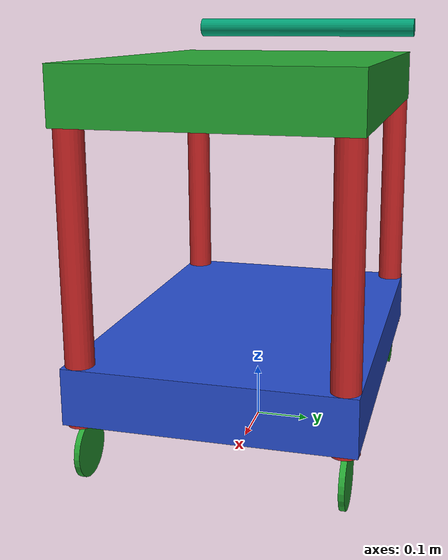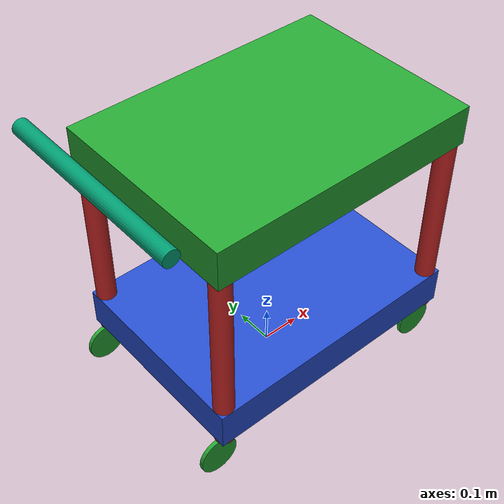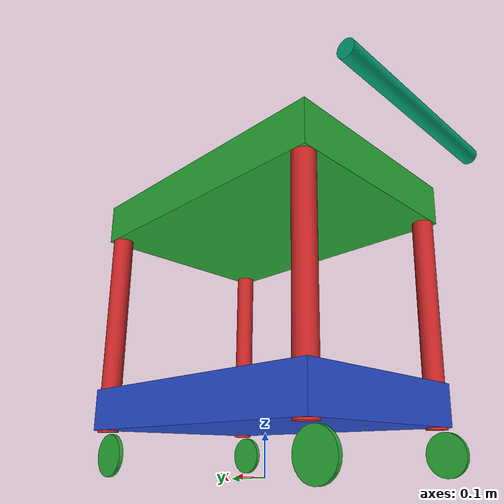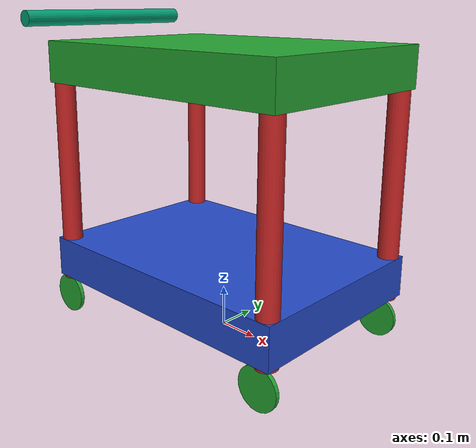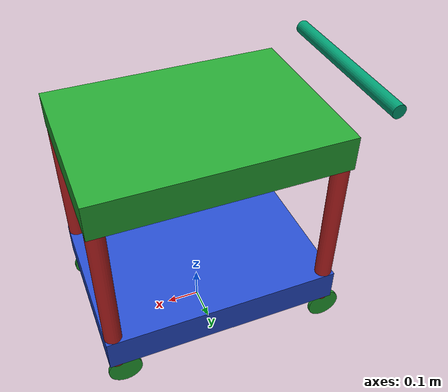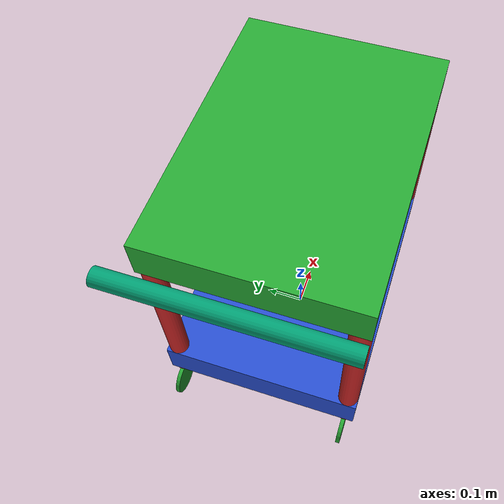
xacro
<?xml version="1.0"?>
<robot name="continuous_pendulum"
       xmlns:xi="http://www.w3.org/2001/XInclude"
       xmlns:gazebo="http://playerstage.sourceforge.net/gazebo/xmlschema/#gz"
       xmlns:model="http://playerstage.sourceforge.net/gazebo/xmlschema/#model"
       xmlns:sensor="http://playerstage.sourceforge.net/gazebo/xmlschema/#sensor"
       xmlns:body="http://playerstage.sourceforge.net/gazebo/xmlschema/#body"
       xmlns:geom="http://playerstage.sourceforge.net/gazebo/xmlschema/#geom"
       xmlns:joint="http://playerstage.sourceforge.net/gazebo/xmlschema/#joint"
       xmlns:interface="http://playerstage.sourceforge.net/gazebo/xmlschema/#interface"
       xmlns:rendering="http://playerstage.sourceforge.net/gazebo/xmlschema/#rendering"
       xmlns:renderable="http://playerstage.sourceforge.net/gazebo/xmlschema/#renderable"
       xmlns:controller="http://playerstage.sourceforge.net/gazebo/xmlschema/#controller"
       xmlns:xacro="http://ros.org/wiki/xacro"
       xmlns:physics="http://playerstage.sourceforge.net/gazebo/xmlschema/#physics">

  <xacro:property name="M_PI" value="3.1415926535897931" />
  <xacro:property name="base_width" value="0.5" />
  <xacro:property name="base_length" value="0.7" />
  <xacro:property name="base_height" value="0.1" />
  <xacro:property name="top_offset" value="0.5" /> <!-- top shelf offset from base -->
  <xacro:property name="top_width" value="0.5" />
  <xacro:property name="top_length" value="0.7" />
  <xacro:property name="top_height" value="0.1" />
  <xacro:property name="wheel_radius" value="0.05" />
  <xacro:property name="wheel_width" value="0.01" />
  <xacro:property name="wheel_offset" value="0.02" />

  <link name="base">
    <inertial>
      <mass value="1.0"/>
      <origin xyz="0 0 0" />
      <inertia  ixx="0.1" ixy="0.0"  ixz="0.0"  iyy="0.1"  iyz="0.0"  izz="0.1" />
    </inertial>
    <visual>
      <origin xyz="0 0 ${base_height/2+wheel_radius*2+0.01}" rpy="0 0 0" />
      <geometry>
        <box size="${base_length} ${base_width} ${base_height}" />
      </geometry>
    </visual>
    <collision>
      <origin xyz="0 0 ${base_height/2+wheel_radius*2+0.01}" rpy="0 0 0" />
      <geometry>
        <box size="${base_length} ${base_width} ${base_height}" />
      </geometry>
    </collision>
  </link>
  <gazebo reference="base">
    <mu1>10</mu1>
    <mu2>10</mu2>
    <material>Gazebo/Blue</material>
    <turnGravityOff>false</turnGravityOff>
  </gazebo>

  <joint name="base_top_joint" type="fixed" >
    <origin xyz="0 0 ${top_offset}" rpy="0 0 0"/>
    <parent link="base" />
    <child link="top" />
  </joint>
  <link name="top">
    <inertial>
      <mass value="0.1"/>
      <origin xyz="0 0 0" />
      <inertia  ixx="0.01" ixy="0.0"  ixz="0.0"  iyy="0.01"  iyz="0.0"  izz="0.01" />
    </inertial>
    <visual>
      <origin xyz="0 0 ${top_height/2+wheel_radius*2+0.01}" rpy="0 0 0" />
      <geometry>
        <box size="${top_length} ${top_width} ${top_height}" />
      </geometry>
    </visual>
    <collision>
      <origin xyz="0 0 ${top_height/2+wheel_radius*2+0.01}" rpy="0 0 0" />
      <geometry>
        <box size="${top_length} ${top_width} ${top_height}" />
      </geometry>
    </collision>
  </link>
  <gazebo reference="top">
    <mu1>10</mu1>
    <mu2>10</mu2>
    <material>Gazebo/Green</material>
    <turnGravityOff>false</turnGravityOff>
  </gazebo>

  <joint name="handle_joint" type="fixed" >
    <origin xyz="${-top_length/2-0.1} 0 ${top_height/2+wheel_radius*2+0.11}" rpy="0 0 0"/>
    <parent link="top" />
    <child link="handle" />
  </joint>
  <link name="handle">
    <inertial>
      <mass value="0.1"/>
      <origin xyz="0 0 0" />
      <inertia  ixx="0.01" ixy="0.0"  ixz="0.0"  iyy="0.01"  iyz="0.0"  izz="0.01" />
    </inertial>
    <visual>
      <origin xyz="0 0 0" rpy="${M_PI/2} 0 0" />
      <geometry>
        <cylinder radius="0.02" length="${top_width}" />
      </geometry>
    </visual>
    <collision>
      <origin xyz="0 0 0" rpy="${M_PI/2} 0 0" />
      <geometry>
        <cylinder radius="0.02" length="${top_width}" />
      </geometry>
    </collision>
  </link>
  <gazebo reference="handle">
    <mu1>10</mu1>
    <mu2>10</mu2>
    <material>Gazebo/BumpyMetal</material>
    <turnGravityOff>false</turnGravityOff>
  </gazebo>

  <joint name="front_right_caster" type="continuous" >
    <origin xyz="${base_length/2-0.025} ${base_width/2-0.025} ${wheel_radius*2+0.005}" rpy="0 0 0"/>
    <parent link="base" />
    <child link="front_right_caster" />
    <axis xyz="0 0 1" />
  </joint>
  <link name="front_right_caster">
    <inertial>
      <mass value="1.0"/>
      <origin xyz="0 0 0" />
      <inertia  ixx="0.1" ixy="0.0"  ixz="0.0"  iyy="0.1"  iyz="0.0"  izz="0.1" />
    </inertial>
    <visual>
      <origin xyz="0 0 ${top_offset/2+0.0025}" rpy="0 0 0" />
      <geometry>
        <cylinder radius="0.025" length="${top_offset+0.005}" />
      </geometry>
    </visual>
    <collision>
      <origin xyz="0 0 ${top_offset/2+0.0025}" rpy="0 0 0" />
      <geometry>
        <cylinder radius="0.025" length="${top_offset+0.005}" />
      </geometry>
    </collision>
  </link>
  <gazebo reference="front_right_caster">
    <mu1>10</mu1>
    <mu2>10</mu2>
    <material>Gazebo/Red</material>
    <turnGravityOff>false</turnGravityOff>
  </gazebo>

  <joint name="front_left_caster" type="continuous" >
    <origin xyz="${base_length/2-0.025} ${-base_width/2+0.025} ${wheel_radius*2+0.005}" rpy="0 0 0"/>
    <parent link="base" />
    <child link="front_left_caster" />
    <axis xyz="0 0 1" />
  </joint>
  <link name="front_left_caster">
    <inertial>
      <mass value="1.0"/>
      <origin xyz="0 0 0" />
      <inertia  ixx="0.1" ixy="0.0"  ixz="0.0"  iyy="0.1"  iyz="0.0"  izz="0.1" />
    </inertial>
    <visual>
      <origin xyz="0 0 ${top_offset/2+0.0025}" rpy="0 0 0" />
      <geometry>
        <cylinder radius="0.025" length="${top_offset+0.005}" />
      </geometry>
    </visual>
    <collision>
      <origin xyz="0 0 ${top_offset/2+0.0025}" rpy="0 0 0" />
      <geometry>
        <cylinder radius="0.025" length="${top_offset+0.005}" />
      </geometry>
    </collision>
  </link>
  <gazebo reference="front_left_caster">
    <mu1>10</mu1>
    <mu2>10</mu2>
    <material>Gazebo/Red</material>
    <turnGravityOff>false</turnGravityOff>
  </gazebo>

  <joint name="front_right_wheel" type="continuous" >
    <origin xyz="${-wheel_offset} 0 ${-wheel_radius-0.005}" rpy="0 0 0"/>
    <parent link="front_right_caster" />
    <child link="front_right_wheel" />
    <axis xyz="0 1 0" />
  </joint>
  <link name="front_right_wheel">
    <inertial>
      <mass value="0.1"/>
      <origin xyz="0 0 0" />
      <inertia  ixx="0.01" ixy="0.0"  ixz="0.0"  iyy="0.01"  iyz="0.0"  izz="0.01" />
    </inertial>
    <visual>
      <origin xyz="0 0 0" rpy="${M_PI/2} 0 0" />
      <geometry>
        <cylinder radius="${wheel_radius}" length="${wheel_width}" />
      </geometry>
    </visual>
    <collision>
      <origin xyz="0 0 0" rpy="${M_PI/2} 0 0" />
      <geometry>
        <cylinder radius="${wheel_radius}" length="${wheel_width}" />
      </geometry>
    </collision>
  </link>
  <gazebo reference="front_right_wheel">
    <dampingFactor>0.01</dampingFactor>
    <mu1>10</mu1>
    <mu2>10</mu2>
    <material>Gazebo/Green</material>
    <turnGravityOff>false</turnGravityOff>
  </gazebo>

  <joint name="front_left_wheel" type="continuous" >
    <origin xyz="${-wheel_offset} 0 ${-wheel_radius-0.005}" rpy="0 0 0"/>
    <parent link="front_left_caster" />
    <child link="front_left_wheel" />
    <axis xyz="0 1 0" />
  </joint>
  <link name="front_left_wheel">
    <inertial>
      <mass value="0.1"/>
      <origin xyz="0 0 0" />
      <inertia  ixx="0.01" ixy="0.0"  ixz="0.0"  iyy="0.01"  iyz="0.0"  izz="0.01" />
    </inertial>
    <visual>
      <origin xyz="0 0 0" rpy="${M_PI/2} 0 0" />
      <geometry>
        <cylinder radius="${wheel_radius}" length="${wheel_width}" />
      </geometry>
    </visual>
    <collision>
      <origin xyz="0 0 0" rpy="${M_PI/2} 0 0" />
      <geometry>
        <cylinder radius="${wheel_radius}" length="${wheel_width}" />
      </geometry>
    </collision>
  </link>
  <gazebo reference="front_left_wheel">
    <dampingFactor>0.01</dampingFactor>
    <mu1>10</mu1>
    <mu2>10</mu2>
    <material>Gazebo/Green</material>
    <turnGravityOff>false</turnGravityOff>
  </gazebo>

  <joint name="back_right_caster" type="continuous" >
    <origin xyz="${-base_length/2+0.025} ${base_width/2-0.025} ${wheel_radius*2+0.005}" rpy="0 0 0"/>
    <parent link="base" />
    <child link="back_right_caster" />
    <axis xyz="0 0 1" />
  </joint>
  <link name="back_right_caster">
    <inertial>
      <mass value="0.1"/>
      <origin xyz="0 0 0" />
      <inertia  ixx="0.01" ixy="0.0"  ixz="0.0"  iyy="0.01"  iyz="0.0"  izz="0.01" />
    </inertial>
    <visual>
      <origin xyz="0 0 ${top_offset/2+0.0025}" rpy="0 0 0" />
      <geometry>
        <cylinder radius="0.025" length="${top_offset+0.005}" />
      </geometry>
    </visual>
    <collision>
      <origin xyz="0 0 ${top_offset/2+0.0025}" rpy="0 0 0" />
      <geometry>
        <cylinder radius="0.025" length="${top_offset+0.005}" />
      </geometry>
    </collision>
  </link>
  <gazebo reference="back_right_caster">
    <mu1>10</mu1>
    <mu2>10</mu2>
    <material>Gazebo/Red</material>
    <turnGravityOff>false</turnGravityOff>
  </gazebo>

  <joint name="back_left_caster" type="continuous" >
    <origin xyz="${-base_length/2+0.025} ${-base_width/2+0.025} ${wheel_radius*2+0.005}" rpy="0 0 0"/>
    <parent link="base" />
    <child link="back_left_caster" />
    <axis xyz="0 0 1" />
  </joint>
  <link name="back_left_caster">
    <inertial>
      <mass value="0.1"/>
      <origin xyz="0 0 0" />
      <inertia  ixx="0.01" ixy="0.0"  ixz="0.0"  iyy="0.01"  iyz="0.0"  izz="0.01" />
    </inertial>
    <visual>
      <origin xyz="0 0 ${top_offset/2+0.0025}" rpy="0 0 0" />
      <geometry>
        <cylinder radius="0.025" length="${top_offset+0.005}" />
      </geometry>
    </visual>
    <collision>
      <origin xyz="0 0 ${top_offset/2+0.0025}" rpy="0 0 0" />
      <geometry>
        <cylinder radius="0.025" length="${top_offset+0.005}" />
      </geometry>
    </collision>
  </link>
  <gazebo reference="back_left_caster">
    <mu1>10</mu1>
    <mu2>10</mu2>
    <material>Gazebo/Red</material>
    <turnGravityOff>false</turnGravityOff>
  </gazebo>

  <joint name="back_right_wheel" type="continuous" >
    <origin xyz="${-wheel_offset} 0 ${-wheel_radius-0.005}" rpy="0 0 0"/>
    <parent link="back_right_caster" />
    <child link="back_right_wheel" />
    <axis xyz="0 1 0" />
  </joint>
  <link name="back_right_wheel">
    <inertial>
      <mass value="0.1"/>
      <origin xyz="0 0 0" />
      <inertia  ixx="0.01" ixy="0.0"  ixz="0.0"  iyy="0.01"  iyz="0.0"  izz="0.01" />
    </inertial>
    <visual>
      <origin xyz="0 0 0" rpy="${M_PI/2} 0 0" />
      <geometry>
        <cylinder radius="${wheel_radius}" length="${wheel_width}" />
      </geometry>
    </visual>
    <collision>
      <origin xyz="0 0 0" rpy="${M_PI/2} 0 0" />
      <geometry>
        <cylinder radius="${wheel_radius}" length="${wheel_width}" />
      </geometry>
    </collision>
  </link>
  <gazebo reference="back_right_wheel">
    <dampingFactor>0.01</dampingFactor>
    <mu1>10</mu1>
    <mu2>10</mu2>
    <material>Gazebo/Green</material>
    <turnGravityOff>false</turnGravityOff>
  </gazebo>

  <joint name="back_left_wheel" type="continuous" >
    <origin xyz="${-wheel_offset} 0 ${-wheel_radius-0.005}" rpy="0 0 0"/>
    <parent link="back_left_caster" />
    <child link="back_left_wheel" />
    <axis xyz="0 1 0" />
  </joint>
  <link name="back_left_wheel">
    <inertial>
      <mass value="0.1"/>
      <origin xyz="0 0 0" />
      <inertia  ixx="0.01" ixy="0.0"  ixz="0.0"  iyy="0.01"  iyz="0.0"  izz="0.01" />
    </inertial>
    <visual>
      <origin xyz="0 0 0" rpy="${M_PI/2} 0 0" />
      <geometry>
        <cylinder radius="${wheel_radius}" length="${wheel_width}" />
      </geometry>
    </visual>
    <collision>
      <origin xyz="0 0 0" rpy="${M_PI/2} 0 0" />
      <geometry>
        <cylinder radius="${wheel_radius}" length="${wheel_width}" />
      </geometry>
    </collision>
  </link>
  <gazebo reference="back_left_wheel">
    <dampingFactor>0.01</dampingFactor>
    <mu1>10</mu1>
    <mu2>10</mu2>
    <material>Gazebo/Green</material>
    <turnGravityOff>false</turnGravityOff>
  </gazebo>

</robot>
